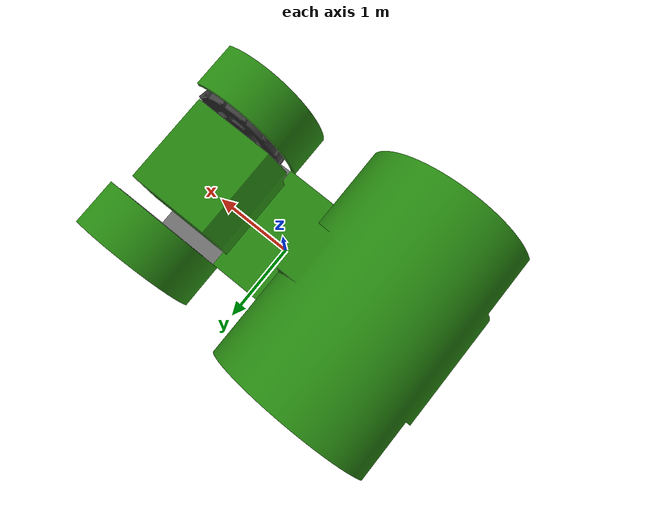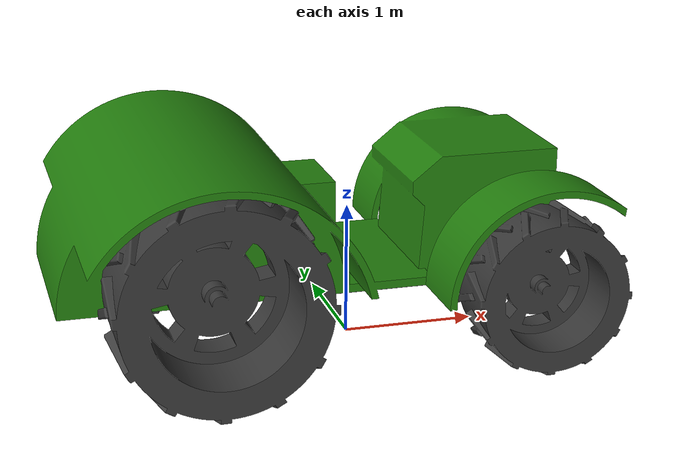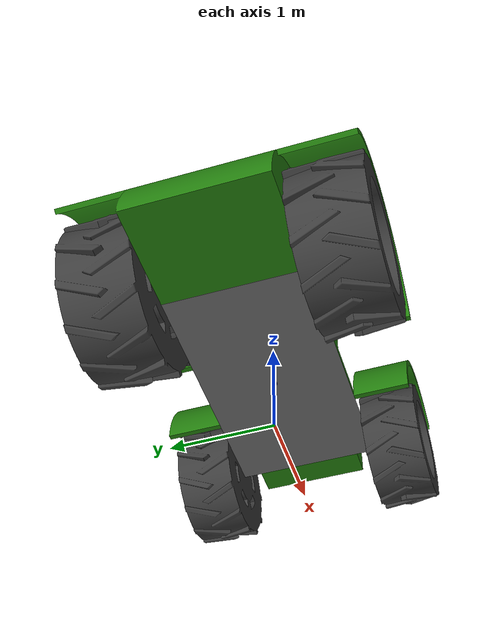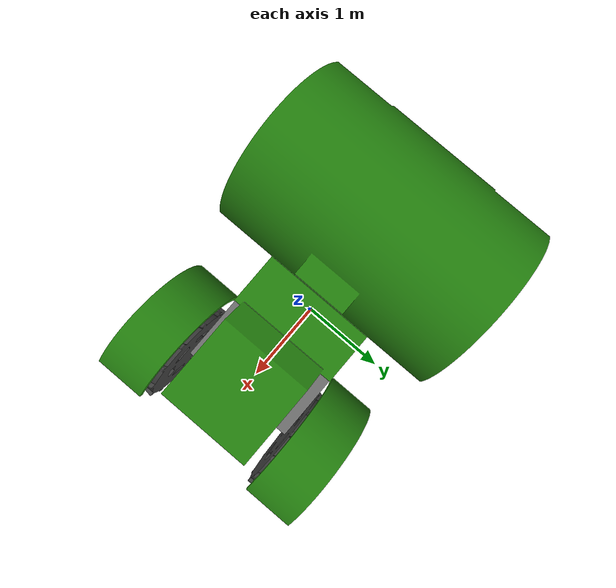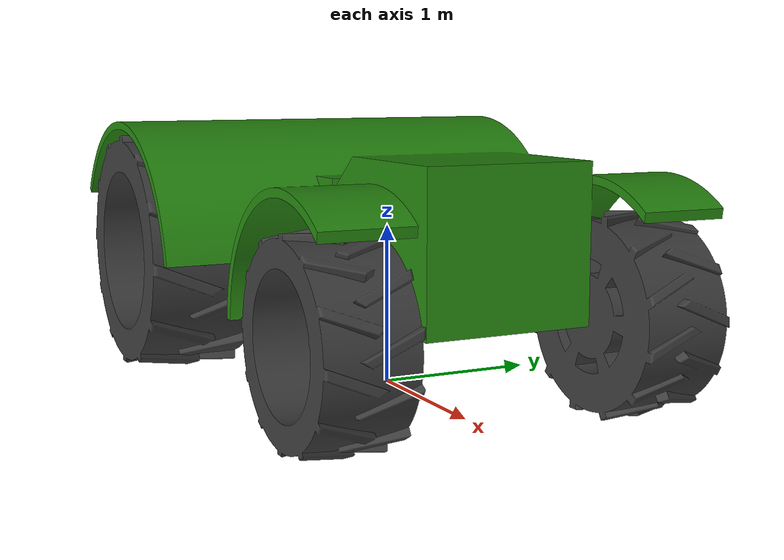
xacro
<?xml version="1.0" ?>
<robot name="tractobots" xmlns:xacro="http://ros.org/wiki/xacro">

  <!-- Import Tractobots properties -->
  <xacro:include filename="$(find tractobots_description)/urdf/includes/tractobots_properties.urdf.xacro" />

  <!-- Import Tractobots materials -->
  <xacro:include filename="$(find tractobots_description)/urdf/includes/tractobots_materials.urdf.xacro" />

  <!-- Import Tractobots model -->
  <xacro:include filename="$(find tractobots_description)/urdf/includes/tractobots_model.urdf.xacro" />

</robot>

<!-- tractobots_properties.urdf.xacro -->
<robot name="xacro_properties"                           xmlns:xacro="http://ros.org/wiki/xacro">

  <xacro:property name="M_PI" 				 value="3.1415926535897931"/>

  <!-- Constants for chassis -->
  <xacro:property name="chassis_height" 		 value="0.001"/>
  <xacro:property name="chassis_length" 		 value="2.4"/>
  <xacro:property name="chassis_width"  		 value="1.348"/>
  <xacro:property name="chassis_mass"   		 value="20" />

  <!-- Data for wheel dimensions from: http://agri.firestone.eu/down/FS_AGDatabook2016_Brochure_EU.pdf -->
  <!-- Constants for front wheels (320/85R24) -->
  <xacro:property name="front_wheel_radius" 		 value="0.575"/>
  <xacro:property name="front_wheel_width"  		 value="0.313"/>
  <xacro:property name="front_wheel_mass"   		 value="4"/> <!-- Must be calculated -->
  <xacro:property name="front_wheel_track"  		 value="0.6"/> <!-- Must be calculated -->

  <!-- Constants for rear wheels (460/85R30) -->
  <xacro:property name="rear_wheel_radius"     value="0.768"/>
  <xacro:property name="rear_wheel_width"      value="0.484"/>
  <xacro:property name="rear_wheel_mass"       value="2"/> <!-- Must be calculated -->
  <xacro:property name="rear_wheel_track"      value="0.535"/> <!-- Must be calculated -->

</robot>

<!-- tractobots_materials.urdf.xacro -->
<robot>

  <material name="black">
    <color rgba="0.0 0.0 0.0 1.0"/>
  </material>

  <material name="blue">
    <color rgba="0.0 0.0 0.8 1.0"/>
  </material>

  <material name="green">
    <color rgba="${37/255} ${132/255} ${15/255} 1.0"/>
  </material>

  <material name="grey">
    <color rgba="${111/255} ${111/255} ${111/255} 1.0"/>
  </material>

  <material name="light_grey">
    <color rgba="${211/255} ${211/255} ${211/255} 1.0"/>
  </material>

  <material name="dark_grey">
    <color rgba="${60/255} ${60/255} ${60/255} 1.0"/>
  </material>

  <material name="orange">
    <color rgba="${255/255} ${108/255} ${10/255} 1.0"/>
  </material>

  <material name="brown">
    <color rgba="${222/255} ${207/255} ${195/255} 1.0"/>
  </material>

  <material name="yellow">
    <color rgba="${255/255} ${205/255} ${0/255} 1.0"/>
  </material>

  <material name="red">
    <color rgba="0.8 0.0 0.0 1.0"/>
  </material>

  <material name="white">
    <color rgba="1.0 1.0 1.0 1.0"/>
  </material>

</robot>

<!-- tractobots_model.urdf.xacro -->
<robot name="tractobots_model" xmlns:xacro="http://ros.org/wiki/xacro">
  <xacro:include filename="$(find tractobots_description)/urdf/includes/tractobots_properties.urdf.xacro" />

  <!-- Links -->
  <link name="base_link"/>

  <link name="chassis_link">
    <inertial>
      <origin xyz="0 0 0" rpy="0 0 0"/>
      <mass value="${chassis_mass}"/>
      <inertia  ixx="${1/12*chassis_mass*(chassis_height*chassis_height + chassis_width*chassis_width)}" ixy="0.0" ixz="0.0"
                iyy="${1/12*chassis_mass*(chassis_length*chassis_length + chassis_height*chassis_height)}" iyz="0.0"
                izz="${1/12*chassis_mass*(chassis_length*chassis_length + chassis_width*chassis_width)}"/>
    </inertial>

    <visual>
      <origin xyz="0 0 0" rpy="0 0 0"/>
      <geometry>
      <box size="${chassis_length} ${chassis_width} ${chassis_height}"/>
      </geometry>
      <material name="grey"/>
    </visual>

    <collision>
      <origin xyz="0 0 0" rpy="0 0 0"/>
      <geometry>
      <box size="${chassis_length} ${chassis_width} ${chassis_height}"/>
      </geometry>
    </collision>
  </link>

  <link name="over_chassis_link">
    <collision>
      <origin xyz="0 0 0" rpy="0 0 ${M_PI}"/>
      <geometry>
        <mesh filename="package://tractobots_description/meshes/over_chassis.stl"/>
      </geometry>
    </collision>
    <visual>
      <origin xyz="0 0 0" rpy="0 0 ${M_PI}"/>
      <geometry>
        <mesh filename="package://tractobots_description/meshes/over_chassis.stl"/>
      </geometry>
      <material name="green"/>
    </visual>
  </link>

  <link name="imu_link">
    <collision>
      <origin xyz="0 0 0" rpy="0 0 0"/>
      <geometry>
        <box size="0.05 0.05 0.05"/>
      </geometry>
    </collision>
    <visual>
      <origin xyz="0 0 0" rpy="0 0 0"/>
      <geometry>
        <box size="0.05 0.05 0.05"/>
      </geometry>
      <material name="blue"/>
    </visual>
  </link>

  <link name="gps_link">
    <collision>
      <origin xyz="0 0 0" rpy="0 0 0"/>
      <geometry>
        <box size="0.05 0.05 0.05"/>
      </geometry>
    </collision>
    <visual>
      <origin xyz="0 0 0" rpy="0 0 0"/>
      <geometry>
        <box size="0.05 0.05 0.05"/>
      </geometry>
      <material name="light_grey"/>
    </visual>
  </link>

  <link name="rear_left_wheel_link">
    <collision>
      <origin xyz="0 0 0" rpy="${M_PI/2} 0 0"/>
      <geometry>
        <mesh filename="package://tractobots_description/meshes/rear_left_wheel.stl"/>
      </geometry>
    </collision>
    <visual>
      <origin xyz="0 0 0" rpy="${M_PI/2} 0 0"/>
      <geometry>
        <mesh filename="package://tractobots_description/meshes/rear_left_wheel.stl"/>
      </geometry>
      <material name="dark_grey"/>
    </visual>
  </link>

  <link name="rear_right_wheel_link">
    <collision>
      <origin xyz="0 0 0" rpy="${M_PI/2} 0 0"/>
      <geometry>
        <mesh filename="package://tractobots_description/meshes/rear_right_wheel.stl"/>
      </geometry>
    </collision>
    <visual>
      <origin xyz="0 0 0" rpy="${M_PI/2} 0 0"/>
      <geometry>
        <mesh filename="package://tractobots_description/meshes/rear_right_wheel.stl"/>
      </geometry>
      <material name="dark_grey"/>
    </visual>
  </link>

  <link name="front_left_wheel_link">
    <collision>
      <origin xyz="0 0 0" rpy="${M_PI/2} 0 0"/>
      <geometry>
        <mesh filename="package://tractobots_description/meshes/front_left_wheel.stl"/>
      </geometry>
    </collision>
    <visual>
      <origin xyz="0 0 0" rpy="${M_PI/2} 0 0"/>
      <geometry>
        <mesh filename="package://tractobots_description/meshes/front_left_wheel.stl"/>
      </geometry>
      <material name="dark_grey"/>
    </visual>
  </link>

  <link name="front_right_wheel_link">
    <collision>
      <origin xyz="0 0 0" rpy="${M_PI/2} 0 0"/>
      <geometry>
        <mesh filename="package://tractobots_description/meshes/front_right_wheel.stl"/>
      </geometry>
    </collision>
    <visual>
      <origin xyz="0 0 0" rpy="${M_PI/2} 0 0"/>
      <geometry>
        <mesh filename="package://tractobots_description/meshes/front_right_wheel.stl"/>
      </geometry>
      <material name="dark_grey"/>
    </visual>
  </link>

  <!-- Joints -->
  <joint name="chassis_joint" type="fixed">
    <parent link="base_link"/>
    <child link="chassis_link"/>
    <origin xyz="0 0 ${front_wheel_radius}" rpy="0 0 0"/>
  </joint>

  <joint name="over_chassis_joint" type="fixed">
    <parent link="chassis_link"/>
    <child link="over_chassis_link"/>
    <origin xyz="0 0 ${chassis_height}" rpy="0 0 0"/>
  </joint>

  <joint name="imu_joint" type="fixed">
    <parent link="over_chassis_link"/>
    <child link="imu_link"/>
    <origin xyz="0 0 0" rpy="0 0 0"/> <!-- Need to be set! -->
  </joint>

  <joint name="gps_joint" type="fixed">
    <parent link="over_chassis_link"/>
    <child link="gps_link"/>
    <origin xyz="0 0 0"/> <!-- Need to be set! -->
  </joint>

  <joint name="front_right_wheel_joint" type="fixed">
    <parent link="chassis_link"/>
    <child link="front_right_wheel_link"/>
    <origin xyz="${chassis_length/2} ${chassis_width/2} 0" rpy="0 0 0"/>
  </joint>

  <joint name="front_left_wheel_joint" type="fixed">
    <parent link="chassis_link"/>
    <child link="front_left_wheel_link"/>
    <origin xyz="${chassis_length/2} ${-(chassis_width/2)} 0" rpy="0 0 0"/>
  </joint>

  <joint name="rear_right_wheel_joint" type="fixed">
    <parent link="chassis_link"/>
    <child link="rear_right_wheel_link"/>
    <origin xyz="${-chassis_length/2} ${chassis_width/2} ${-(front_wheel_radius - rear_wheel_radius)}" rpy="0 0 0"/>
  </joint>

  <joint name="rear_left_wheel_joint" type="fixed">
    <parent link="chassis_link"/>
    <child link="rear_left_wheel_link"/>
    <origin xyz="${-chassis_length/2} ${-(chassis_width/2)} ${-(front_wheel_radius - rear_wheel_radius)}" rpy="0 0 0"/>
  </joint>

</robot>
